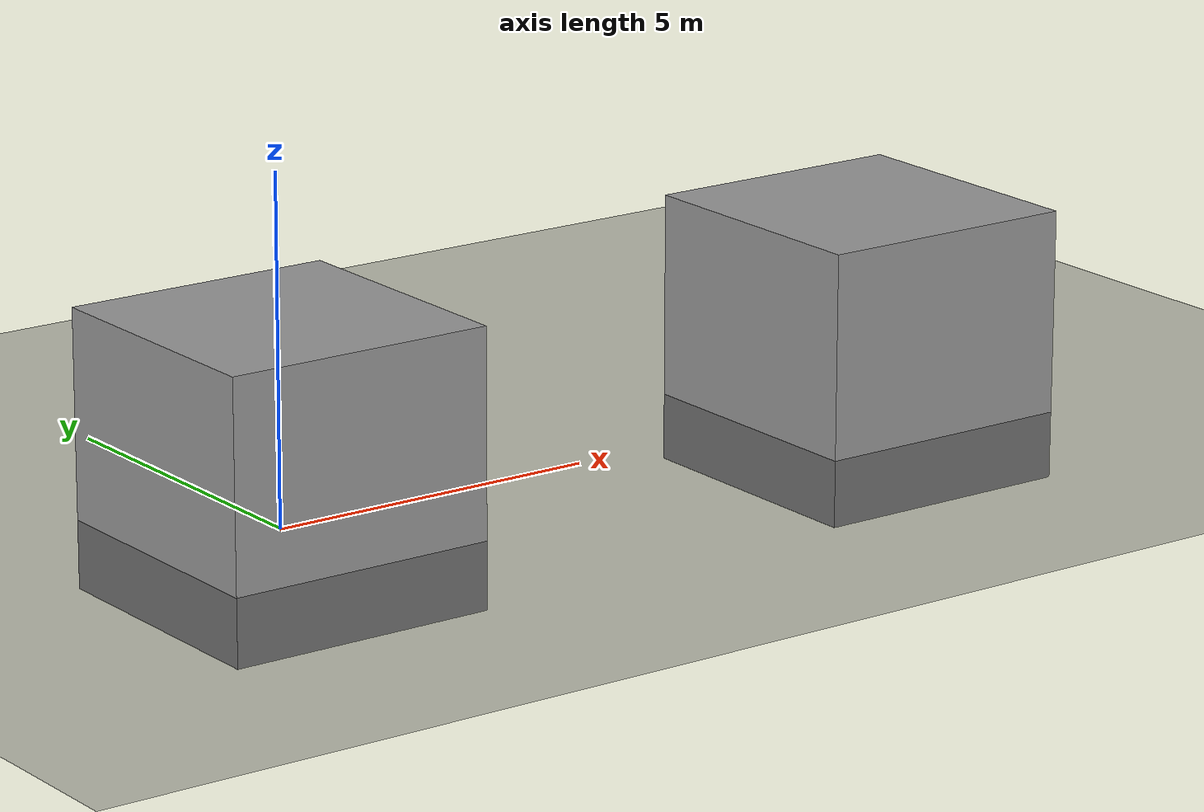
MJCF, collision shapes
<mujoco model="go2_moon_scene">
    <!-- 包含狗模型 -->
    <include file="go2_jet.xml"/>

    <statistic center="0 0 0.1" extent="0.8"/>

    <visual>
        <headlight diffuse="0.8 0.8 0.8" ambient="0.4 0.4 0.4" specular="0.2 0.2 0.2"/>
        <rgba haze="0.15 0.25 0.35 1"/>
        <global azimuth="-130" elevation="-20"/>
    </visual>

    <option gravity="0 0 -3.71" timestep="0.002"/> <!-- 月球重力 -->

    <asset>
        <!-- 天空与纹理 -->
        <texture type="skybox" builtin="gradient" rgb1="0.2 0.3 0.4" rgb2="0 0 0" width="512" height="3072"/>

        <!-- 月球表面灰度纹理 -->
        <texture name="moon_tex" type="2d" builtin="flat"
                 width="256" height="256"
                 rgb1="0.6 0.6 0.6" rgb2="0.4 0.4 0.4"/>
        <material name="moon_mat" texture="moon_tex" reflectance="0.2"/>

        <!-- 加载坑洼地形（你生成的 PNG） -->
    </asset>

    <worldbody>
        <!-- 光源 -->
        <light pos="0 0 3" dir="0 0 -1" diffuse="1 1 1" specular="0.3 0.3 0.3"/>

        <geom name="platform_start" type="box" size="2 2 2" pos="0 0 1" rgba="0.6 0.6 0.6 1"/>
        <geom name="platform_end" type="box" size="2 2 2" pos="10 0 1" rgba="0.6 0.6 0.6 1"/>
        <geom name="floor_fail" type="plane" size="20 20 0.1" pos="0 0 0" rgba="0.1 0.1 0.1 1"/>

        <!-- 替换平面地面为坑洼地形 -->

    </worldbody>
</mujoco>

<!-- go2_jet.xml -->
<mujoco model="go2">
  <compiler angle="radian" meshdir="assets" autolimits="true"/>

  <option cone="elliptic" impratio="100"/>

  <default>
    <default class="go2">
      <geom friction="0.6" margin="0.001" condim="4"/>
      <joint axis="0 1 0" damping="0.1" armature="0.01" frictionloss="0.2"/>
      <motor ctrlrange="-23.7 23.7"/>
      <default class="abduction">
        <joint axis="1 0 0" range="-1.0472 1.0472"/>
      </default>
      <default class="hip">
        <default class="front_hip">
          <joint range="-1.5708 3.4907"/>
        </default>
        <default class="back_hip">
          <joint range="-0.5236 4.5379"/>
        </default>
      </default>
      <default class="knee">
        <joint range="-2.7227 -0.83776"/>
        <motor ctrlrange="-45.43 45.43"/>
      </default>
      <default class="visual">
        <geom type="mesh" contype="0" conaffinity="0" group="2"/>
      </default>
      <default class="collision">
        <geom group="3"/>
        <default class="foot">
          <geom size="0.022" pos="-0.002 0 -0.213" priority="1" solimp="0.015 1 0.022" condim="6"
            friction="0.8 0.02 0.01"/>
        </default>
      </default>
    </default>
  </default>

  <asset>
    <material name="metal" rgba=".9 .95 .95 1"/>
    <material name="black" rgba="0 0 0 1"/>
    <material name="white" rgba="1 1 1 1"/>
    <material name="gray" rgba="0.671705 0.692426 0.774270 1"/>

    <mesh file="base_0.obj"/>
    <mesh file="base_1.obj"/>
    <mesh file="base_2.obj"/>
    <mesh file="base_3.obj"/>
    <mesh file="base_4.obj"/>
    <mesh file="hip_0.obj"/>
    <mesh file="hip_1.obj"/>
    <mesh file="thigh_0.obj"/>
    <mesh file="thigh_1.obj"/>
    <mesh file="thigh_mirror_0.obj"/>
    <mesh file="thigh_mirror_1.obj"/>
    <mesh file="calf_0.obj"/>
    <mesh file="calf_1.obj"/>
    <mesh file="calf_mirror_0.obj"/>
    <mesh file="calf_mirror_1.obj"/>
    <mesh file="foot.obj"/>
    <mesh file="rocket_L.STL" scale="0.002 0.002 0.002"/>
    <mesh file="rocket_R.STL" scale="0.002 0.002 0.002"/>
  </asset>

  <worldbody>
    <body name="base" pos="0 0 0.5" childclass="go2">
      <inertial pos="0.021112 0 -0.005366" quat="-0.000543471 0.713435 -0.00173769 0.700719" mass="6.921"
        diaginertia="0.107027 0.0980771 0.0244531"/>
      <freejoint/>
      <geom mesh="base_0" material="black" class="visual"/>
      <geom mesh="base_1" material="black" class="visual"/>
      <geom mesh="base_2" material="black" class="visual"/>
      <geom mesh="base_3" material="white" class="visual"/>
      <geom mesh="base_4" material="gray" class="visual"/>
      <geom size="0.1881 0.04675 0.057" type="box" class="collision"/>
      <geom size="0.05 0.045" pos="0.285 0 0.01" type="cylinder" class="collision"/>
      <geom size="0.047" pos="0.293 0 -0.06" class="collision"/>
      <site name="imu" pos="-0.02557 0 0.04232"/>
      <body name="FL_hip" pos="0.1934 0.0465 0">
        <inertial pos="-0.0054 0.00194 -0.000105" quat="0.497014 0.499245 0.505462 0.498237" mass="0.678"
          diaginertia="0.00088403 0.000596003 0.000479967"/>
        <joint name="FL_hip_joint" class="abduction"/>
        <geom mesh="hip_0" material="metal" class="visual"/>
        <geom mesh="hip_1" material="gray" class="visual"/>
        <geom size="0.046 0.02" pos="0 0.08 0" quat="1 1 0 0" type="cylinder" class="collision"/>
        <body name="FL_thigh" pos="0 0.0955 0">
          <inertial pos="-0.00374 -0.0223 -0.0327" quat="0.829533 0.0847635 -0.0200632 0.551623" mass="1.152"
            diaginertia="0.00594973 0.00584149 0.000878787"/>
          <joint name="FL_thigh_joint" class="front_hip"/>
          <geom mesh="thigh_0" material="metal" class="visual"/>
          <geom mesh="thigh_1" material="gray" class="visual"/>
          <geom size="0.1065 0.01225 0.017" pos="0 0 -0.1065" quat="0.707107 0 0.707107 0" type="box" class="collision"/>

          <body name = "FL_rocket" pos= "-0.01 0.033 -0.03">
            <geom type="mesh" mesh="rocket_L" pos="0.02 0.02 -0.07" euler="1.5708 -1.5708 0" class="visual" material="metal"/>
            <site name="FL_rocket_site" pos="0 0 -0.03"/>
            <geom name="FL_flame" type="cylinder" pos="0 0 -0.12" size="0.01 0.05"
            rgba="1 0.5 0 0.0" contype="0" conaffinity="0" class="visual" density="0"/>
          </body>

          <body name="FL_calf" pos="0 0 -0.213">
            <inertial pos="0.00629595 -0.000622121 -0.141417" quat="0.710672 0.00154099 -0.00450087 0.703508"
              mass="0.241352" diaginertia="0.0014901 0.00146356 5.31397e-05"/>
            <joint name="FL_calf_joint" class="knee"/>
            <geom mesh="calf_0" material="gray" class="visual"/>
            <geom mesh="calf_1" material="black" class="visual"/>
            <geom size="0.012 0.06" pos="0.008 0 -0.06" quat="0.994493 0 -0.104807 0" type="cylinder" class="collision"/>
            <geom size="0.011 0.0325" pos="0.02 0 -0.148" quat="0.999688 0 0.0249974 0" type="cylinder" class="collision"/>
            <geom pos="0 0 -0.213" mesh="foot" class="visual" material="black"/>
            <geom name="FL" class="foot"/>
          </body>

        </body>
      </body>
      <body name="FR_hip" pos="0.1934 -0.0465 0">
        <inertial pos="-0.0054 -0.00194 -0.000105" quat="0.498237 0.505462 0.499245 0.497014" mass="0.678"
          diaginertia="0.00088403 0.000596003 0.000479967"/>
        <joint name="FR_hip_joint" class="abduction"/>
        <geom mesh="hip_0" material="metal" class="visual" quat="4.63268e-05 1 0 0"/>
        <geom mesh="hip_1" material="gray" class="visual" quat="4.63268e-05 1 0 0"/>
        <geom size="0.046 0.02" pos="0 -0.08 0" quat="0.707107 0.707107 0 0" type="cylinder" class="collision"/>
        <body name="FR_thigh" pos="0 -0.0955 0">
          <inertial pos="-0.00374 0.0223 -0.0327" quat="0.551623 -0.0200632 0.0847635 0.829533" mass="1.152"
            diaginertia="0.00594973 0.00584149 0.000878787"/>
          <joint name="FR_thigh_joint" class="front_hip"/>
          <geom mesh="thigh_mirror_0" material="metal" class="visual"/>
          <geom mesh="thigh_mirror_1" material="gray" class="visual"/>
          <geom size="0.1065 0.01225 0.017" pos="0 0 -0.1065" quat="0.707107 0 0.707107 0" type="box" class="collision"/>

          <body name = "FR_rocket" pos= "-0.01 -0.033 -0.03">
            <geom type="mesh" mesh="rocket_R" pos="0.02 0.02 -0.07" euler="1.5708 -1.5708 0" class="visual" material="metal"/>
            <site name="FR_rocket_site" pos="0 0 -0.03"/>
            <geom name="FR_flame" type="cylinder" pos="0 0 -0.12" size="0.01 0.05"
            rgba="1 0.5 0 0.0" contype="0" conaffinity="0" class="visual" density="0"/>
          </body>

          <body name="FR_calf" pos="0 0 -0.213">
            <inertial pos="0.00629595 0.000622121 -0.141417" quat="0.703508 -0.00450087 0.00154099 0.710672"
              mass="0.241352" diaginertia="0.0014901 0.00146356 5.31397e-05"/>
            <joint name="FR_calf_joint" class="knee"/>
            <geom mesh="calf_mirror_0" material="gray" class="visual"/>
            <geom mesh="calf_mirror_1" material="black" class="visual"/>
            <geom size="0.013 0.06" pos="0.01 0 -0.06" quat="0.995004 0 -0.0998334 0" type="cylinder" class="collision"/>
            <geom size="0.011 0.0325" pos="0.02 0 -0.148" quat="0.999688 0 0.0249974 0" type="cylinder" class="collision"/>
            <geom pos="0 0 -0.213" mesh="foot" class="visual" material="black"/>
            <geom name="FR" class="foot"/>
          </body>
        </body>
      </body>
      <body name="RL_hip" pos="-0.1934 0.0465 0">
        <inertial pos="0.0054 0.00194 -0.000105" quat="0.505462 0.498237 0.497014 0.499245" mass="0.678"
          diaginertia="0.00088403 0.000596003 0.000479967"/>
        <joint name="RL_hip_joint" class="abduction"/>
        <geom mesh="hip_0" material="metal" class="visual" quat="4.63268e-05 0 1 0"/>
        <geom mesh="hip_1" material="gray" class="visual" quat="4.63268e-05 0 1 0"/>
        <geom size="0.046 0.02" pos="0 0.08 0" quat="0.707107 0.707107 0 0" type="cylinder" class="collision"/>
        <body name="RL_thigh" pos="0 0.0955 0">
          <inertial pos="-0.00374 -0.0223 -0.0327" quat="0.829533 0.0847635 -0.0200632 0.551623" mass="1.152"
            diaginertia="0.00594973 0.00584149 0.000878787"/>
          <joint name="RL_thigh_joint" class="back_hip"/>
          <geom mesh="thigh_0" material="metal" class="visual"/>
          <geom mesh="thigh_1" material="gray" class="visual"/>
          <geom size="0.1065 0.01225 0.017" pos="0 0 -0.1065" quat="0.707107 0 0.707107 0" type="box" class="collision"/>

          <body name = "RL_rocket" pos= "-0.01 0.033 -0.03">
            <geom type="mesh" mesh="rocket_L" pos="0.02 0.02 -0.07" euler="1.5708 -1.5708 0" class="visual" material="metal"/>
            <site name="RL_rocket_site" pos="0 0 -0.03"/>
            <geom name="RL_flame" type="cylinder" pos="0 0 -0.12" size="0.01 0.05"
            rgba="1 0.5 0 0.0" contype="0" conaffinity="0" class="visual" density="0"/>
          </body>

          <body name="RL_calf" pos="0 0 -0.213">
            <inertial pos="0.00629595 -0.000622121 -0.141417" quat="0.710672 0.00154099 -0.00450087 0.703508"
              mass="0.241352" diaginertia="0.0014901 0.00146356 5.31397e-05"/>
            <joint name="RL_calf_joint" class="knee"/>
            <geom mesh="calf_0" material="gray" class="visual"/>
            <geom mesh="calf_1" material="black" class="visual"/>
            <geom size="0.013 0.06" pos="0.01 0 -0.06" quat="0.995004 0 -0.0998334 0" type="cylinder" class="collision"/>
            <geom size="0.011 0.0325" pos="0.02 0 -0.148" quat="0.999688 0 0.0249974 0" type="cylinder" class="collision"/>
            <geom pos="0 0 -0.213" mesh="foot" class="visual" material="black"/>
            <geom name="RL" class="foot"/>
          </body>
        </body>
      </body>
      <body name="RR_hip" pos="-0.1934 -0.0465 0">
        <inertial pos="0.0054 -0.00194 -0.000105" quat="0.499245 0.497014 0.498237 0.505462" mass="0.678"
          diaginertia="0.00088403 0.000596003 0.000479967"/>
        <joint name="RR_hip_joint" class="abduction"/>
        <geom mesh="hip_0" material="metal" class="visual" quat="2.14617e-09 4.63268e-05 4.63268e-05 -1"/>
        <geom mesh="hip_1" material="gray" class="visual" quat="2.14617e-09 4.63268e-05 4.63268e-05 -1"/>
        <geom size="0.046 0.02" pos="0 -0.08 0" quat="0.707107 0.707107 0 0" type="cylinder" class="collision"/>
        <body name="RR_thigh" pos="0 -0.0955 0">
          <inertial pos="-0.00374 0.0223 -0.0327" quat="0.551623 -0.0200632 0.0847635 0.829533" mass="1.152"
            diaginertia="0.00594973 0.00584149 0.000878787"/>
          <joint name="RR_thigh_joint" class="back_hip"/>
          <geom mesh="thigh_mirror_0" material="metal" class="visual"/>
          <geom mesh="thigh_mirror_1" material="gray" class="visual"/>
          <geom size="0.1065 0.01225 0.017" pos="0 0 -0.1065" quat="0.707107 0 0.707107 0" type="box" class="collision"/>

          <body name = "RR_rocket" pos= "-0.01 -0.033 -0.03">
            <geom type="mesh" mesh="rocket_R" pos="0.02 0.02 -0.07" euler="1.5708 -1.5708 0" class="visual" material="metal"/>
            <site name="RR_rocket_site" pos="0 0 -0.03"/>
            <geom name="RR_flame" type="cylinder" pos="0 0 -0.12" size="0.01 0.05"
            rgba="1 0.5 0 0.0" contype="0" conaffinity="0" class="visual" density="0"/>
          </body>

          <body name="RR_calf" pos="0 0 -0.213">
            <inertial pos="0.00629595 0.000622121 -0.141417" quat="0.703508 -0.00450087 0.00154099 0.710672"
              mass="0.241352" diaginertia="0.0014901 0.00146356 5.31397e-05"/>
            <joint name="RR_calf_joint" class="knee"/>
            <geom mesh="calf_mirror_0" material="gray" class="visual"/>
            <geom mesh="calf_mirror_1" material="black" class="visual"/>
            <geom size="0.013 0.06" pos="0.01 0 -0.06" quat="0.995004 0 -0.0998334 0" type="cylinder" class="collision"/>
            <geom size="0.011 0.0325" pos="0.02 0 -0.148" quat="0.999688 0 0.0249974 0" type="cylinder" class="collision"/>
            <geom pos="0 0 -0.213" mesh="foot" class="visual" material="black"/>
            <geom name="RR" class="foot"/>
          </body>
        </body>
      </body>
    </body>
  </worldbody>

  <actuator>
    <motor class="abduction" name="FL_hip" joint="FL_hip_joint"/>
    <motor class="hip" name="FL_thigh" joint="FL_thigh_joint"/>
    <motor class="knee" name="FL_calf" joint="FL_calf_joint"/>
    <motor class="abduction" name="FR_hip" joint="FR_hip_joint"/>
    <motor class="hip" name="FR_thigh" joint="FR_thigh_joint"/>
    <motor class="knee" name="FR_calf" joint="FR_calf_joint"/>
    <motor class="abduction" name="RL_hip" joint="RL_hip_joint"/>
    <motor class="hip" name="RL_thigh" joint="RL_thigh_joint"/>
    <motor class="knee" name="RL_calf" joint="RL_calf_joint"/>
    <motor class="abduction" name="RR_hip" joint="RR_hip_joint"/>
    <motor class="hip" name="RR_thigh" joint="RR_thigh_joint"/>
    <motor class="knee" name="RR_calf" joint="RR_calf_joint"/>
    <general name="FL_rocket_thruster" site="FL_rocket_site" ctrllimited="true" ctrlrange="0 50" gear="0 0 1 0 0 0"/>
    <general name="FR_rocket_thruster" site="FR_rocket_site" ctrllimited="true" ctrlrange="0 50" gear="0 0 1 0 0 0"/>
    <general name="RL_rocket_thruster" site="RL_rocket_site" ctrllimited="true" ctrlrange="0 50" gear="0 0 1 0 0 0"/>
    <general name="RR_rocket_thruster" site="RR_rocket_site" ctrllimited="true" ctrlrange="0 50" gear="0 0 1 0 0 0"/>
  </actuator>

  <sensor>
    <jointpos name="FR_hip_pos" joint="FR_hip_joint" />
    <jointpos name="FR_thigh_pos" joint="FR_thigh_joint" />
    <jointpos name="FR_calf_pos" joint="FR_calf_joint" />
    <jointpos name="FL_hip_pos" joint="FL_hip_joint" />
    <jointpos name="FL_thigh_pos" joint="FL_thigh_joint" />
    <jointpos name="FL_calf_pos" joint="FL_calf_joint" />
    <jointpos name="RR_hip_pos" joint="RR_hip_joint" />
    <jointpos name="RR_thigh_pos" joint="RR_thigh_joint" />
    <jointpos name="RR_calf_pos" joint="RR_calf_joint" />
    <jointpos name="RL_hip_pos" joint="RL_hip_joint" />
    <jointpos name="RL_thigh_pos" joint="RL_thigh_joint" />
    <jointpos name="RL_calf_pos" joint="RL_calf_joint" />

    <jointvel name="FR_hip_vel" joint="FR_hip_joint" />
    <jointvel name="FR_thigh_vel" joint="FR_thigh_joint" />
    <jointvel name="FR_calf_vel" joint="FR_calf_joint" />
    <jointvel name="FL_hip_vel" joint="FL_hip_joint" />
    <jointvel name="FL_thigh_vel" joint="FL_thigh_joint" />
    <jointvel name="FL_calf_vel" joint="FL_calf_joint" />
    <jointvel name="RR_hip_vel" joint="RR_hip_joint" />
    <jointvel name="RR_thigh_vel" joint="RR_thigh_joint" />
    <jointvel name="RR_calf_vel" joint="RR_calf_joint" />
    <jointvel name="RL_hip_vel" joint="RL_hip_joint" />
    <jointvel name="RL_thigh_vel" joint="RL_thigh_joint" />
    <jointvel name="RL_calf_vel" joint="RL_calf_joint" />

    <jointactuatorfrc name="FR_hip_torque" joint="FR_hip_joint" noise="0.01" />
    <jointactuatorfrc name="FR_thigh_torque" joint="FR_thigh_joint" noise="0.01" />
    <jointactuatorfrc name="FR_calf_torque" joint="FR_calf_joint" noise="0.01" />
    <jointactuatorfrc name="FL_hip_torque" joint="FL_hip_joint" noise="0.01" />
    <jointactuatorfrc name="FL_thigh_torque" joint="FL_thigh_joint" noise="0.01" />
    <jointactuatorfrc name="FL_calf_torque" joint="FL_calf_joint" noise="0.01" />
    <jointactuatorfrc name="RR_hip_torque" joint="RR_hip_joint" noise="0.01" />
    <jointactuatorfrc name="RR_thigh_torque" joint="RR_thigh_joint" noise="0.01" />
    <jointactuatorfrc name="RR_calf_torque" joint="RR_calf_joint" noise="0.01" />
    <jointactuatorfrc name="RL_hip_torque" joint="RL_hip_joint" noise="0.01" />
    <jointactuatorfrc name="RL_thigh_torque" joint="RL_thigh_joint" noise="0.01" />
    <jointactuatorfrc name="RL_calf_torque" joint="RL_calf_joint" noise="0.01" />

    <framequat name="imu_quat" objtype="site" objname="imu" />
    <gyro name="imu_gyro" site="imu" />
    <accelerometer name="imu_acc" site="imu" />

    <framepos name="frame_pos" objtype="site" objname="imu" />
    <framelinvel name="frame_vel" objtype="site" objname="imu" />
  </sensor>
  <keyframe>
  <key name="init"
       qpos="0 0 3.3 1 0 0 0   0 0.9 -1.57   0 0.9 -1.57   0 0.9 -1.57   0 0.9 -1.57"
       ctrl="0 0 0 0 0 0 0 0 0 0 0 0 0 0 0 0"/>
  </keyframe>
</mujoco>
